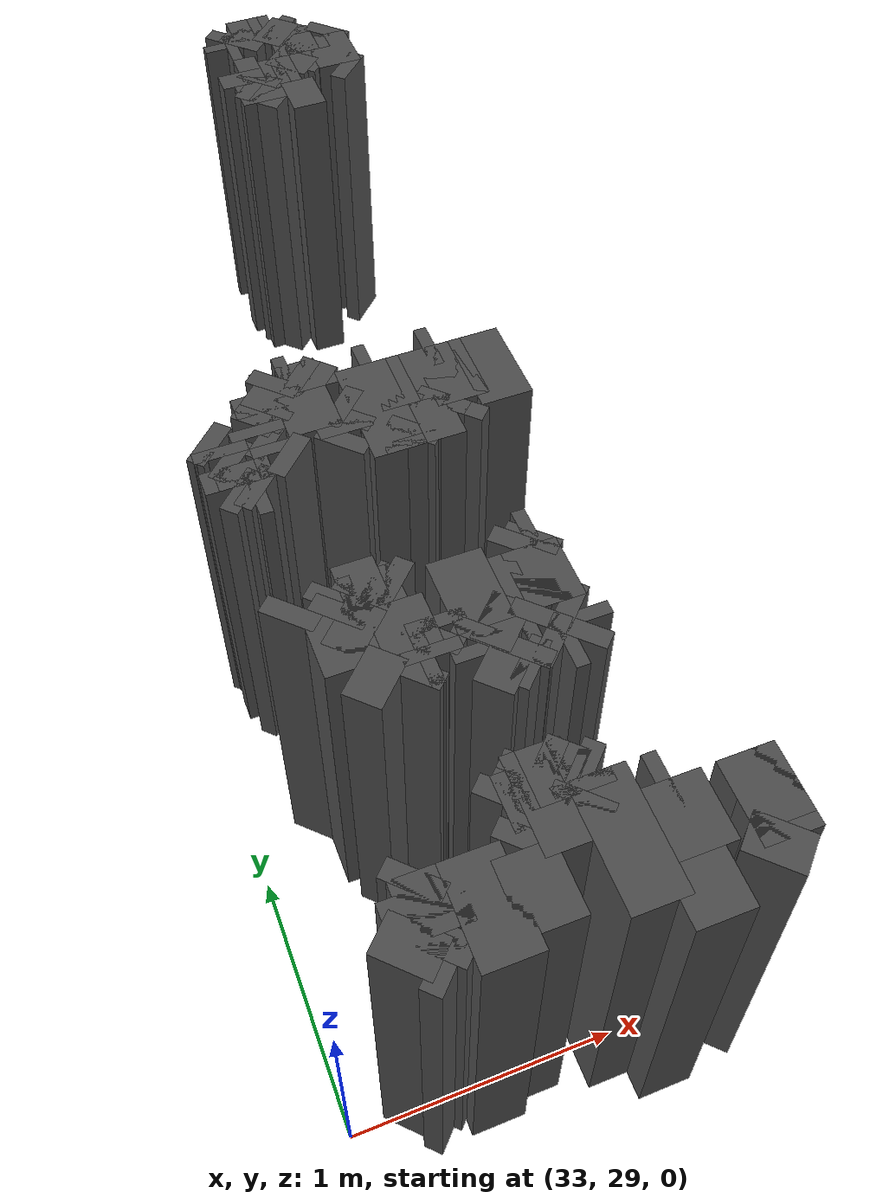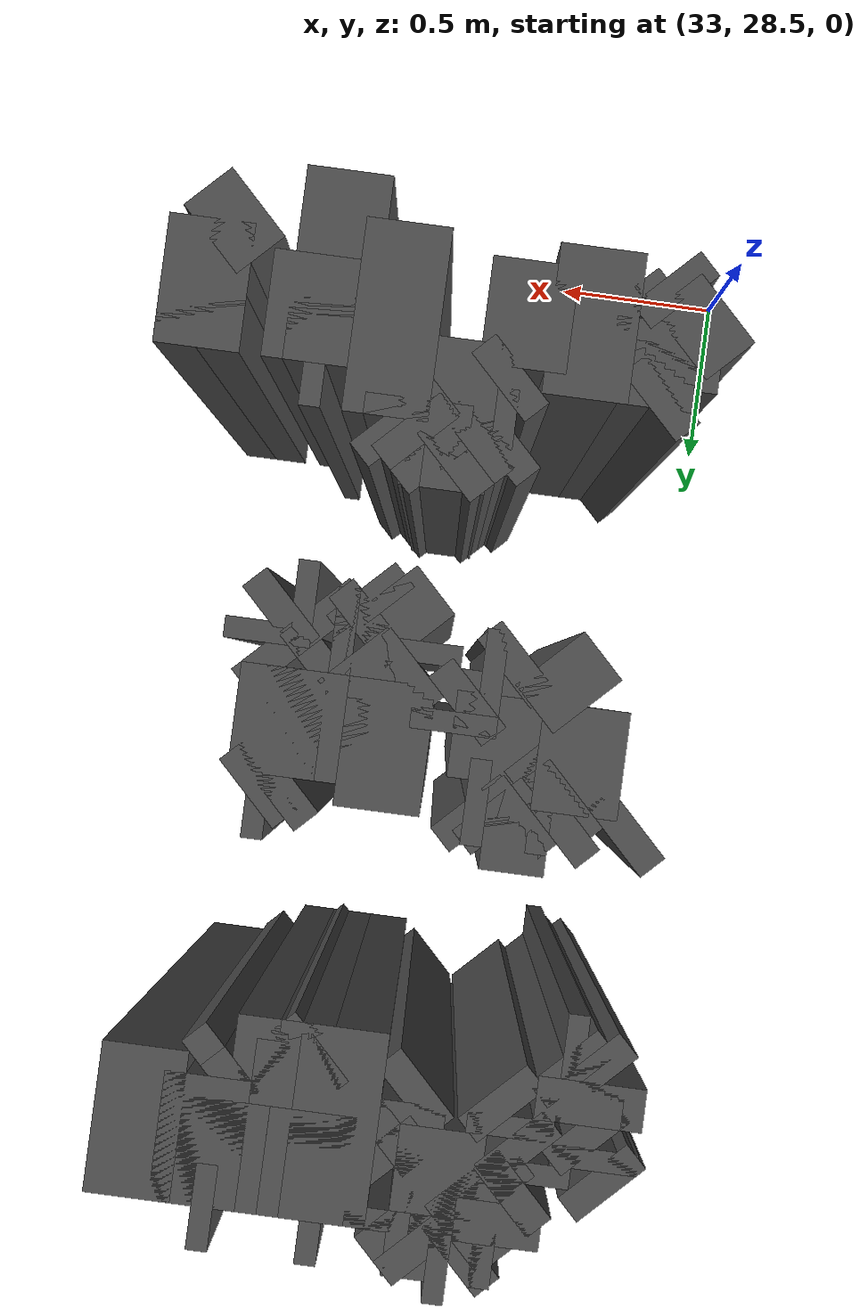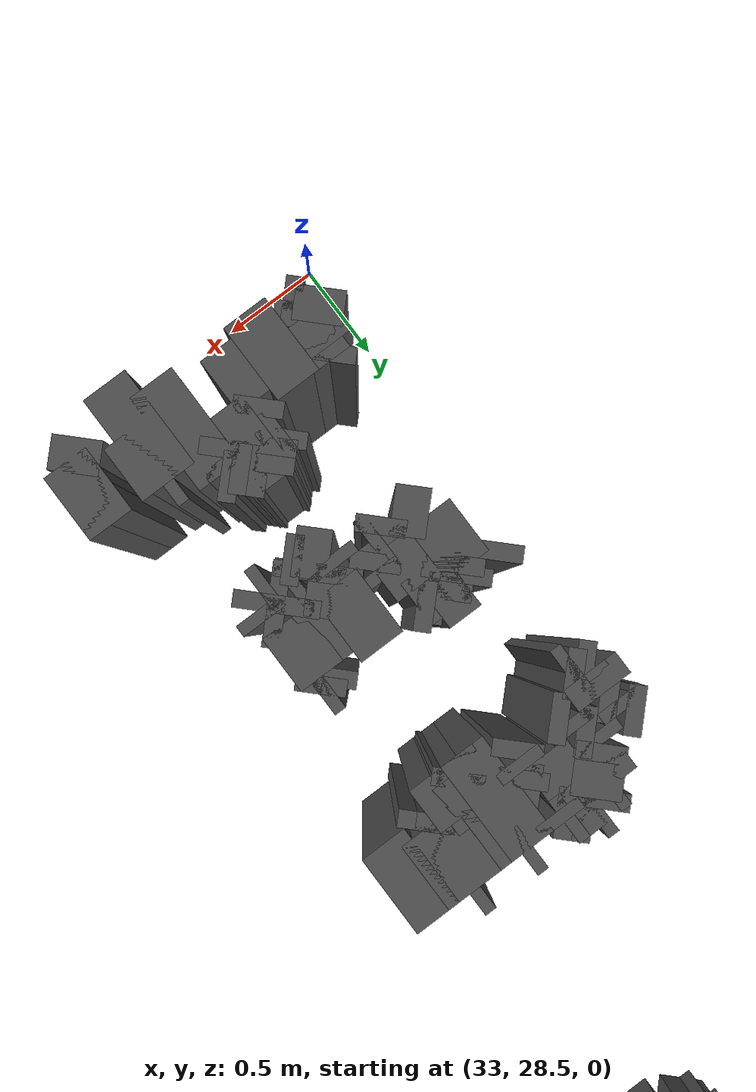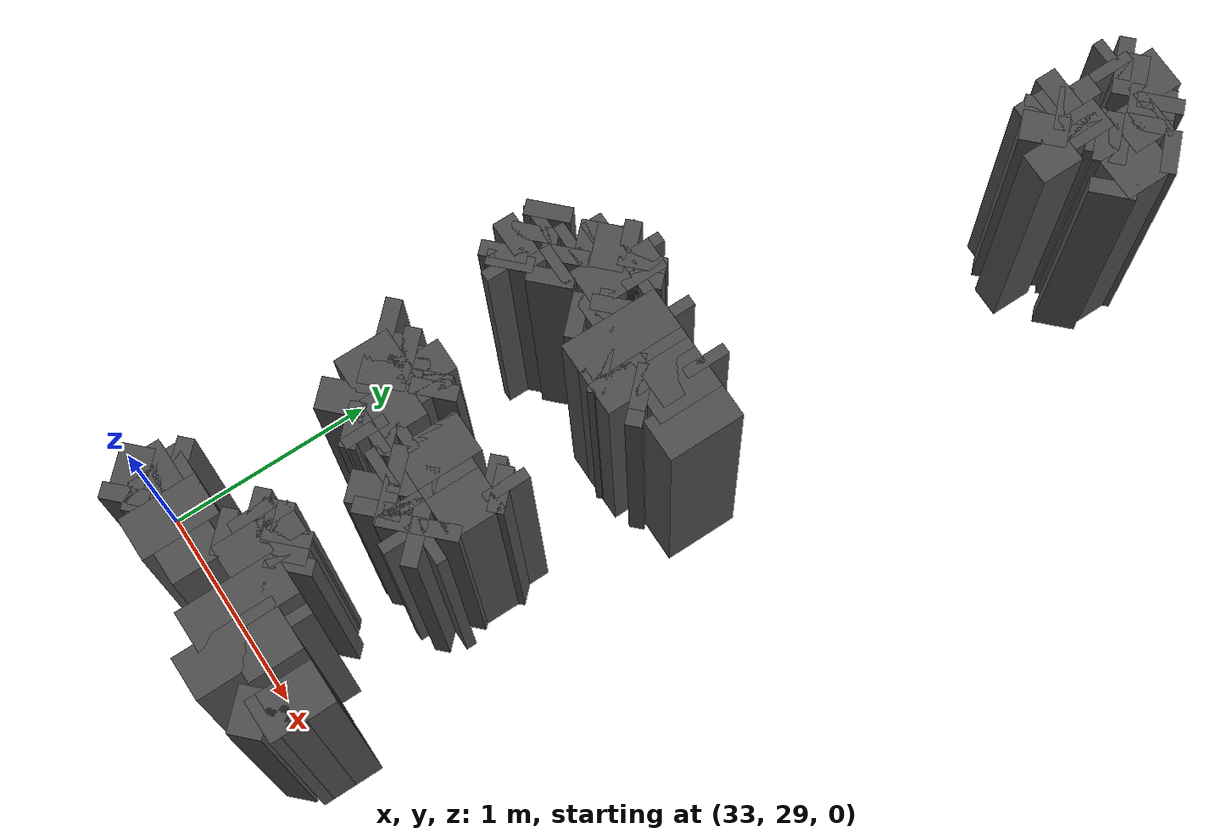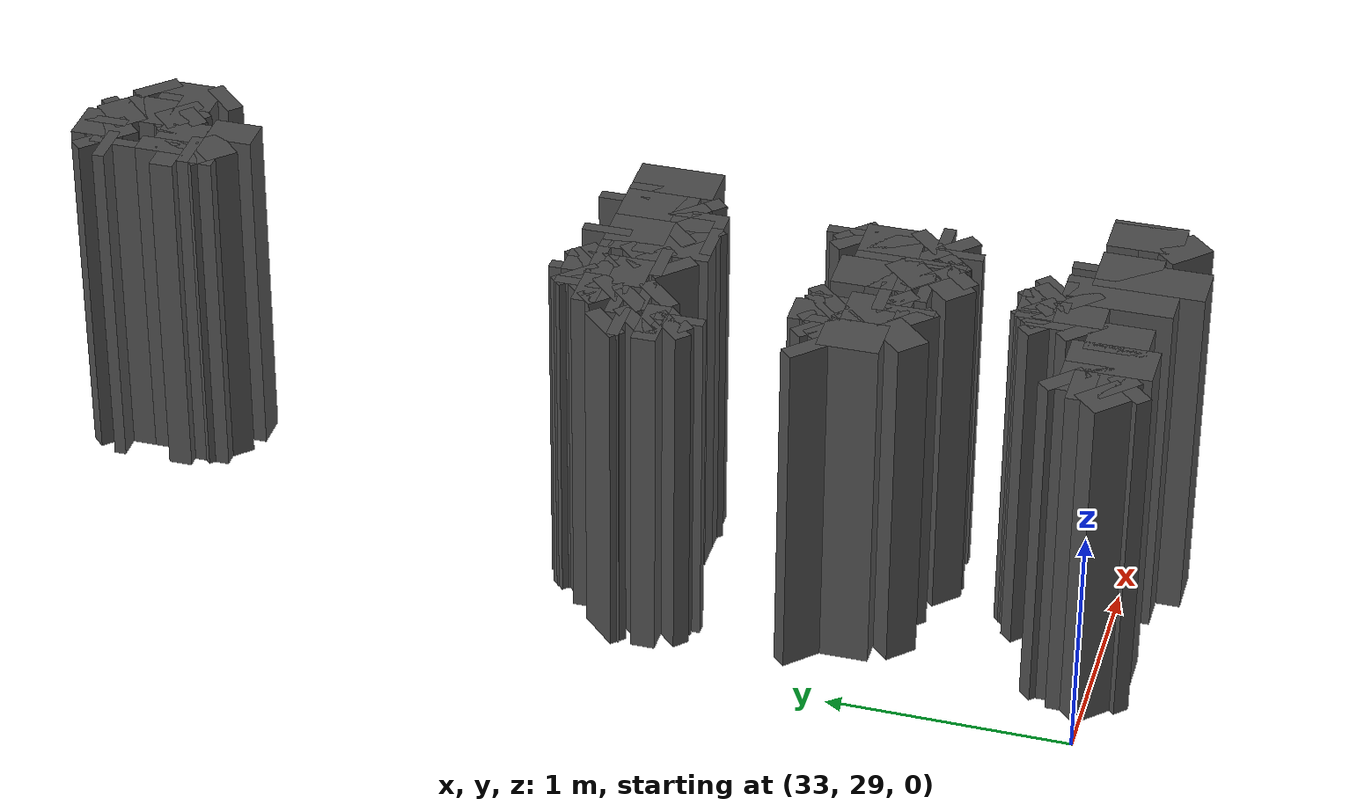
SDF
<sdf version="1.9">
 <model name="generated_walls">
  <static>true</static>
  <link name="wall_7_2">
   <pose>34.425 32.975 0.75 0 0 2.356</pose>
   <collision name="collision"><geometry><box><size>0.071 0.2 1.5</size></box></geometry></collision>
   <visual name="visual">
    <geometry><box><size>0.071 0.2 1.5</size></box></geometry>
    <material><ambient>0.3 0.3 0.3 1</ambient></material>
   </visual>
  </link>
  <link name="wall_7_3">
   <pose>34.400 33.125 0.75 0 0 1.571</pose>
   <collision name="collision"><geometry><box><size>0.250 0.2 1.5</size></box></geometry></collision>
   <visual name="visual">
    <geometry><box><size>0.250 0.2 1.5</size></box></geometry>
    <material><ambient>0.3 0.3 0.3 1</ambient></material>
   </visual>
  </link>
  <link name="wall_7_4">
   <pose>34.425 33.275 0.75 0 0 0.785</pose>
   <collision name="collision"><geometry><box><size>0.071 0.2 1.5</size></box></geometry></collision>
   <visual name="visual">
    <geometry><box><size>0.071 0.2 1.5</size></box></geometry>
    <material><ambient>0.3 0.3 0.3 1</ambient></material>
   </visual>
  </link>
  <link name="wall_8_0">
   <pose>34.000 32.900 0.75 0 0 1.571</pose>
   <collision name="collision"><geometry><box><size>0.100 0.2 1.5</size></box></geometry></collision>
   <visual name="visual">
    <geometry><box><size>0.100 0.2 1.5</size></box></geometry>
    <material><ambient>0.3 0.3 0.3 1</ambient></material>
   </visual>
  </link>
  <link name="wall_8_1">
   <pose>33.975 32.975 0.75 0 0 2.356</pose>
   <collision name="collision"><geometry><box><size>0.071 0.2 1.5</size></box></geometry></collision>
   <visual name="visual">
    <geometry><box><size>0.071 0.2 1.5</size></box></geometry>
    <material><ambient>0.3 0.3 0.3 1</ambient></material>
   </visual>
  </link>
  <link name="wall_8_2">
   <pose>33.950 33.050 0.75 0 0 1.571</pose>
   <collision name="collision"><geometry><box><size>0.100 0.2 1.5</size></box></geometry></collision>
   <visual name="visual">
    <geometry><box><size>0.100 0.2 1.5</size></box></geometry>
    <material><ambient>0.3 0.3 0.3 1</ambient></material>
   </visual>
  </link>
  <link name="wall_8_3">
   <pose>34.000 33.100 0.75 0 0 0.000</pose>
   <collision name="collision"><geometry><box><size>0.100 0.2 1.5</size></box></geometry></collision>
   <visual name="visual">
    <geometry><box><size>0.100 0.2 1.5</size></box></geometry>
    <material><ambient>0.3 0.3 0.3 1</ambient></material>
   </visual>
  </link>
  <link name="wall_8_4">
   <pose>34.075 33.075 0.75 0 0 -0.785</pose>
   <collision name="collision"><geometry><box><size>0.071 0.2 1.5</size></box></geometry></collision>
   <visual name="visual">
    <geometry><box><size>0.071 0.2 1.5</size></box></geometry>
    <material><ambient>0.3 0.3 0.3 1</ambient></material>
   </visual>
  </link>
  <link name="wall_8_5">
   <pose>34.125 33.050 0.75 0 0 0.000</pose>
   <collision name="collision"><geometry><box><size>0.050 0.2 1.5</size></box></geometry></collision>
   <visual name="visual">
    <geometry><box><size>0.050 0.2 1.5</size></box></geometry>
    <material><ambient>0.3 0.3 0.3 1</ambient></material>
   </visual>
  </link>
  <link name="wall_8_6">
   <pose>34.200 33.100 0.75 0 0 0.785</pose>
   <collision name="collision"><geometry><box><size>0.141 0.2 1.5</size></box></geometry></collision>
   <visual name="visual">
    <geometry><box><size>0.141 0.2 1.5</size></box></geometry>
    <material><ambient>0.3 0.3 0.3 1</ambient></material>
   </visual>
  </link>
  <link name="wall_8_7">
   <pose>34.250 33.225 0.75 0 0 1.571</pose>
   <collision name="collision"><geometry><box><size>0.150 0.2 1.5</size></box></geometry></collision>
   <visual name="visual">
    <geometry><box><size>0.150 0.2 1.5</size></box></geometry>
    <material><ambient>0.3 0.3 0.3 1</ambient></material>
   </visual>
  </link>
  <link name="wall_8_8">
   <pose>34.200 33.350 0.75 0 0 2.356</pose>
   <collision name="collision"><geometry><box><size>0.141 0.2 1.5</size></box></geometry></collision>
   <visual name="visual">
    <geometry><box><size>0.141 0.2 1.5</size></box></geometry>
    <material><ambient>0.3 0.3 0.3 1</ambient></material>
   </visual>
  </link>
  <link name="wall_8_9">
   <pose>34.125 33.400 0.75 0 0 3.142</pose>
   <collision name="collision"><geometry><box><size>0.050 0.2 1.5</size></box></geometry></collision>
   <visual name="visual">
    <geometry><box><size>0.050 0.2 1.5</size></box></geometry>
    <material><ambient>0.3 0.3 0.3 1</ambient></material>
   </visual>
  </link>
  <link name="wall_8_10">
   <pose>34.050 33.350 0.75 0 0 -2.356</pose>
   <collision name="collision"><geometry><box><size>0.141 0.2 1.5</size></box></geometry></collision>
   <visual name="visual">
    <geometry><box><size>0.141 0.2 1.5</size></box></geometry>
    <material><ambient>0.3 0.3 0.3 1</ambient></material>
   </visual>
  </link>
  <link name="wall_8_11">
   <pose>33.975 33.300 0.75 0 0 3.142</pose>
   <collision name="collision"><geometry><box><size>0.050 0.2 1.5</size></box></geometry></collision>
   <visual name="visual">
    <geometry><box><size>0.050 0.2 1.5</size></box></geometry>
    <material><ambient>0.3 0.3 0.3 1</ambient></material>
   </visual>
  </link>
  <link name="wall_8_12">
   <pose>33.950 33.325 0.75 0 0 1.571</pose>
   <collision name="collision"><geometry><box><size>0.050 0.2 1.5</size></box></geometry></collision>
   <visual name="visual">
    <geometry><box><size>0.050 0.2 1.5</size></box></geometry>
    <material><ambient>0.3 0.3 0.3 1</ambient></material>
   </visual>
  </link>
  <link name="wall_8_13">
   <pose>33.975 33.375 0.75 0 0 0.785</pose>
   <collision name="collision"><geometry><box><size>0.071 0.2 1.5</size></box></geometry></collision>
   <visual name="visual">
    <geometry><box><size>0.071 0.2 1.5</size></box></geometry>
    <material><ambient>0.3 0.3 0.3 1</ambient></material>
   </visual>
  </link>
  <link name="wall_8_14">
   <pose>34.100 33.400 0.75 0 0 0.000</pose>
   <collision name="collision"><geometry><box><size>0.200 0.2 1.5</size></box></geometry></collision>
   <visual name="visual">
    <geometry><box><size>0.200 0.2 1.5</size></box></geometry>
    <material><ambient>0.3 0.3 0.3 1</ambient></material>
   </visual>
  </link>
  <link name="wall_8_15">
   <pose>34.225 33.375 0.75 0 0 -0.785</pose>
   <collision name="collision"><geometry><box><size>0.071 0.2 1.5</size></box></geometry></collision>
   <visual name="visual">
    <geometry><box><size>0.071 0.2 1.5</size></box></geometry>
    <material><ambient>0.3 0.3 0.3 1</ambient></material>
   </visual>
  </link>
  <link name="wall_8_16">
   <pose>34.250 33.325 0.75 0 0 -1.571</pose>
   <collision name="collision"><geometry><box><size>0.050 0.2 1.5</size></box></geometry></collision>
   <visual name="visual">
    <geometry><box><size>0.050 0.2 1.5</size></box></geometry>
    <material><ambient>0.3 0.3 0.3 1</ambient></material>
   </visual>
  </link>
  <link name="wall_8_17">
   <pose>34.275 33.275 0.75 0 0 -0.785</pose>
   <collision name="collision"><geometry><box><size>0.071 0.2 1.5</size></box></geometry></collision>
   <visual name="visual">
    <geometry><box><size>0.071 0.2 1.5</size></box></geometry>
    <material><ambient>0.3 0.3 0.3 1</ambient></material>
   </visual>
  </link>
  <link name="wall_8_18">
   <pose>34.300 33.200 0.75 0 0 -1.571</pose>
   <collision name="collision"><geometry><box><size>0.100 0.2 1.5</size></box></geometry></collision>
   <visual name="visual">
    <geometry><box><size>0.100 0.2 1.5</size></box></geometry>
    <material><ambient>0.3 0.3 0.3 1</ambient></material>
   </visual>
  </link>
  <link name="wall_8_19">
   <pose>34.250 33.100 0.75 0 0 -2.356</pose>
   <collision name="collision"><geometry><box><size>0.141 0.2 1.5</size></box></geometry></collision>
   <visual name="visual">
    <geometry><box><size>0.141 0.2 1.5</size></box></geometry>
    <material><ambient>0.3 0.3 0.3 1</ambient></material>
   </visual>
  </link>
  <link name="wall_8_20">
   <pose>34.125 33.050 0.75 0 0 3.142</pose>
   <collision name="collision"><geometry><box><size>0.150 0.2 1.5</size></box></geometry></collision>
   <visual name="visual">
    <geometry><box><size>0.150 0.2 1.5</size></box></geometry>
    <material><ambient>0.3 0.3 0.3 1</ambient></material>
   </visual>
  </link>
  <link name="wall_8_21">
   <pose>34.025 33.025 0.75 0 0 -2.356</pose>
   <collision name="collision"><geometry><box><size>0.071 0.2 1.5</size></box></geometry></collision>
   <visual name="visual">
    <geometry><box><size>0.071 0.2 1.5</size></box></geometry>
    <material><ambient>0.3 0.3 0.3 1</ambient></material>
   </visual>
  </link>
  <link name="wall_8_22">
   <pose>34.000 32.975 0.75 0 0 -1.571</pose>
   <collision name="collision"><geometry><box><size>0.050 0.2 1.5</size></box></geometry></collision>
   <visual name="visual">
    <geometry><box><size>0.050 0.2 1.5</size></box></geometry>
    <material><ambient>0.3 0.3 0.3 1</ambient></material>
   </visual>
  </link>
  <link name="wall_8_23">
   <pose>34.050 32.900 0.75 0 0 -0.785</pose>
   <collision name="collision"><geometry><box><size>0.141 0.2 1.5</size></box></geometry></collision>
   <visual name="visual">
    <geometry><box><size>0.141 0.2 1.5</size></box></geometry>
    <material><ambient>0.3 0.3 0.3 1</ambient></material>
   </visual>
  </link>
  <link name="wall_8_24">
   <pose>34.175 32.850 0.75 0 0 0.000</pose>
   <collision name="collision"><geometry><box><size>0.150 0.2 1.5</size></box></geometry></collision>
   <visual name="visual">
    <geometry><box><size>0.150 0.2 1.5</size></box></geometry>
    <material><ambient>0.3 0.3 0.3 1</ambient></material>
   </visual>
  </link>
  <link name="wall_36_0">
   <pose>34.300 30.975 0.75 0 0 1.571</pose>
   <collision name="collision"><geometry><box><size>0.350 0.2 1.5</size></box></geometry></collision>
   <visual name="visual">
    <geometry><box><size>0.350 0.2 1.5</size></box></geometry>
    <material><ambient>0.3 0.3 0.3 1</ambient></material>
   </visual>
  </link>
  <link name="wall_37_0">
   <pose>33.475 30.825 0.75 0 0 2.356</pose>
   <collision name="collision"><geometry><box><size>0.071 0.2 1.5</size></box></geometry></collision>
   <visual name="visual">
    <geometry><box><size>0.071 0.2 1.5</size></box></geometry>
    <material><ambient>0.3 0.3 0.3 1</ambient></material>
   </visual>
  </link>
  <link name="wall_37_1">
   <pose>33.450 30.875 0.75 0 0 1.571</pose>
   <collision name="collision"><geometry><box><size>0.050 0.2 1.5</size></box></geometry></collision>
   <visual name="visual">
    <geometry><box><size>0.050 0.2 1.5</size></box></geometry>
    <material><ambient>0.3 0.3 0.3 1</ambient></material>
   </visual>
  </link>
  <link name="wall_37_2">
   <pose>33.425 30.925 0.75 0 0 2.356</pose>
   <collision name="collision"><geometry><box><size>0.071 0.2 1.5</size></box></geometry></collision>
   <visual name="visual">
    <geometry><box><size>0.071 0.2 1.5</size></box></geometry>
    <material><ambient>0.3 0.3 0.3 1</ambient></material>
   </visual>
  </link>
  <link name="wall_37_3">
   <pose>33.400 30.975 0.75 0 0 1.571</pose>
   <collision name="collision"><geometry><box><size>0.050 0.2 1.5</size></box></geometry></collision>
   <visual name="visual">
    <geometry><box><size>0.050 0.2 1.5</size></box></geometry>
    <material><ambient>0.3 0.3 0.3 1</ambient></material>
   </visual>
  </link>
  <link name="wall_37_4">
   <pose>33.425 31.025 0.75 0 0 0.785</pose>
   <collision name="collision"><geometry><box><size>0.071 0.2 1.5</size></box></geometry></collision>
   <visual name="visual">
    <geometry><box><size>0.071 0.2 1.5</size></box></geometry>
    <material><ambient>0.3 0.3 0.3 1</ambient></material>
   </visual>
  </link>
  <link name="wall_37_5">
   <pose>33.450 31.100 0.75 0 0 1.571</pose>
   <collision name="collision"><geometry><box><size>0.100 0.2 1.5</size></box></geometry></collision>
   <visual name="visual">
    <geometry><box><size>0.100 0.2 1.5</size></box></geometry>
    <material><ambient>0.3 0.3 0.3 1</ambient></material>
   </visual>
  </link>
  <link name="wall_37_6">
   <pose>33.475 31.150 0.75 0 0 0.000</pose>
   <collision name="collision"><geometry><box><size>0.050 0.2 1.5</size></box></geometry></collision>
   <visual name="visual">
    <geometry><box><size>0.050 0.2 1.5</size></box></geometry>
    <material><ambient>0.3 0.3 0.3 1</ambient></material>
   </visual>
  </link>
  <link name="wall_37_7">
   <pose>33.525 31.175 0.75 0 0 0.785</pose>
   <collision name="collision"><geometry><box><size>0.071 0.2 1.5</size></box></geometry></collision>
   <visual name="visual">
    <geometry><box><size>0.071 0.2 1.5</size></box></geometry>
    <material><ambient>0.3 0.3 0.3 1</ambient></material>
   </visual>
  </link>
  <link name="wall_37_8">
   <pose>33.575 31.200 0.75 0 0 0.000</pose>
   <collision name="collision"><geometry><box><size>0.050 0.2 1.5</size></box></geometry></collision>
   <visual name="visual">
    <geometry><box><size>0.050 0.2 1.5</size></box></geometry>
    <material><ambient>0.3 0.3 0.3 1</ambient></material>
   </visual>
  </link>
  <link name="wall_37_9">
   <pose>33.625 31.175 0.75 0 0 -0.785</pose>
   <collision name="collision"><geometry><box><size>0.071 0.2 1.5</size></box></geometry></collision>
   <visual name="visual">
    <geometry><box><size>0.071 0.2 1.5</size></box></geometry>
    <material><ambient>0.3 0.3 0.3 1</ambient></material>
   </visual>
  </link>
  <link name="wall_37_10">
   <pose>33.675 31.150 0.75 0 0 0.000</pose>
   <collision name="collision"><geometry><box><size>0.050 0.2 1.5</size></box></geometry></collision>
   <visual name="visual">
    <geometry><box><size>0.050 0.2 1.5</size></box></geometry>
    <material><ambient>0.3 0.3 0.3 1</ambient></material>
   </visual>
  </link>
  <link name="wall_37_11">
   <pose>33.700 31.125 0.75 0 0 -1.571</pose>
   <collision name="collision"><geometry><box><size>0.050 0.2 1.5</size></box></geometry></collision>
   <visual name="visual">
    <geometry><box><size>0.050 0.2 1.5</size></box></geometry>
    <material><ambient>0.3 0.3 0.3 1</ambient></material>
   </visual>
  </link>
  <link name="wall_37_12">
   <pose>33.675 31.125 0.75 0 0 2.356</pose>
   <collision name="collision"><geometry><box><size>0.071 0.2 1.5</size></box></geometry></collision>
   <visual name="visual">
    <geometry><box><size>0.071 0.2 1.5</size></box></geometry>
    <material><ambient>0.3 0.3 0.3 1</ambient></material>
   </visual>
  </link>
  <link name="wall_37_13">
   <pose>33.600 31.150 0.75 0 0 3.142</pose>
   <collision name="collision"><geometry><box><size>0.100 0.2 1.5</size></box></geometry></collision>
   <visual name="visual">
    <geometry><box><size>0.100 0.2 1.5</size></box></geometry>
    <material><ambient>0.3 0.3 0.3 1</ambient></material>
   </visual>
  </link>
  <link name="wall_37_14">
   <pose>33.500 31.100 0.75 0 0 -2.356</pose>
   <collision name="collision"><geometry><box><size>0.141 0.2 1.5</size></box></geometry></collision>
   <visual name="visual">
    <geometry><box><size>0.141 0.2 1.5</size></box></geometry>
    <material><ambient>0.3 0.3 0.3 1</ambient></material>
   </visual>
  </link>
  <link name="wall_37_15">
   <pose>33.475 31.025 0.75 0 0 -0.785</pose>
   <collision name="collision"><geometry><box><size>0.071 0.2 1.5</size></box></geometry></collision>
   <visual name="visual">
    <geometry><box><size>0.071 0.2 1.5</size></box></geometry>
    <material><ambient>0.3 0.3 0.3 1</ambient></material>
   </visual>
  </link>
  <link name="wall_37_16">
   <pose>33.600 31.000 0.75 0 0 0.000</pose>
   <collision name="collision"><geometry><box><size>0.200 0.2 1.5</size></box></geometry></collision>
   <visual name="visual">
    <geometry><box><size>0.200 0.2 1.5</size></box></geometry>
    <material><ambient>0.3 0.3 0.3 1</ambient></material>
   </visual>
  </link>
  <link name="wall_37_17">
   <pose>33.725 30.975 0.75 0 0 -0.785</pose>
   <collision name="collision"><geometry><box><size>0.071 0.2 1.5</size></box></geometry></collision>
   <visual name="visual">
    <geometry><box><size>0.071 0.2 1.5</size></box></geometry>
    <material><ambient>0.3 0.3 0.3 1</ambient></material>
   </visual>
  </link>
  <link name="wall_37_18">
   <pose>33.725 30.925 0.75 0 0 -2.356</pose>
   <collision name="collision"><geometry><box><size>0.071 0.2 1.5</size></box></geometry></collision>
   <visual name="visual">
    <geometry><box><size>0.071 0.2 1.5</size></box></geometry>
    <material><ambient>0.3 0.3 0.3 1</ambient></material>
   </visual>
  </link>
  <link name="wall_37_19">
   <pose>33.700 30.875 0.75 0 0 -1.571</pose>
   <collision name="collision"><geometry><box><size>0.050 0.2 1.5</size></box></geometry></collision>
   <visual name="visual">
    <geometry><box><size>0.050 0.2 1.5</size></box></geometry>
    <material><ambient>0.3 0.3 0.3 1</ambient></material>
   </visual>
  </link>
  <link name="wall_37_20">
   <pose>33.675 30.825 0.75 0 0 -2.356</pose>
   <collision name="collision"><geometry><box><size>0.071 0.2 1.5</size></box></geometry></collision>
   <visual name="visual">
    <geometry><box><size>0.071 0.2 1.5</size></box></geometry>
    <material><ambient>0.3 0.3 0.3 1</ambient></material>
   </visual>
  </link>
  <link name="wall_40_0">
   <pose>33.850 30.925 0.75 0 0 1.571</pose>
   <collision name="collision"><geometry><box><size>0.450 0.2 1.5</size></box></geometry></collision>
   <visual name="visual">
    <geometry><box><size>0.450 0.2 1.5</size></box></geometry>
    <material><ambient>0.3 0.3 0.3 1</ambient></material>
   </visual>
  </link>
  <link name="wall_40_1">
   <pose>33.875 31.150 0.75 0 0 0.000</pose>
   <collision name="collision"><geometry><box><size>0.050 0.2 1.5</size></box></geometry></collision>
   <visual name="visual">
    <geometry><box><size>0.050 0.2 1.5</size></box></geometry>
    <material><ambient>0.3 0.3 0.3 1</ambient></material>
   </visual>
  </link>
  <link name="wall_40_2">
   <pose>33.900 31.025 0.75 0 0 -1.571</pose>
   <collision name="collision"><geometry><box><size>0.250 0.2 1.5</size></box></geometry></collision>
   <visual name="visual">
    <geometry><box><size>0.250 0.2 1.5</size></box></geometry>
    <material><ambient>0.3 0.3 0.3 1</ambient></material>
   </visual>
  </link>
  <link name="wall_40_3">
   <pose>33.925 30.875 0.75 0 0 -0.785</pose>
   <collision name="collision"><geometry><box><size>0.071 0.2 1.5</size></box></geometry></collision>
   <visual name="visual">
    <geometry><box><size>0.071 0.2 1.5</size></box></geometry>
    <material><ambient>0.3 0.3 0.3 1</ambient></material>
   </visual>
  </link>
  <link name="wall_40_4">
   <pose>34.000 30.850 0.75 0 0 0.000</pose>
   <collision name="collision"><geometry><box><size>0.100 0.2 1.5</size></box></geometry></collision>
   <visual name="visual">
    <geometry><box><size>0.100 0.2 1.5</size></box></geometry>
    <material><ambient>0.3 0.3 0.3 1</ambient></material>
   </visual>
  </link>
  <link name="wall_40_5">
   <pose>34.075 30.875 0.75 0 0 0.785</pose>
   <collision name="collision"><geometry><box><size>0.071 0.2 1.5</size></box></geometry></collision>
   <visual name="visual">
    <geometry><box><size>0.071 0.2 1.5</size></box></geometry>
    <material><ambient>0.3 0.3 0.3 1</ambient></material>
   </visual>
  </link>
  <link name="wall_40_6">
   <pose>34.100 31.025 0.75 0 0 1.571</pose>
   <collision name="collision"><geometry><box><size>0.250 0.2 1.5</size></box></geometry></collision>
   <visual name="visual">
    <geometry><box><size>0.250 0.2 1.5</size></box></geometry>
    <material><ambient>0.3 0.3 0.3 1</ambient></material>
   </visual>
  </link>
  <link name="wall_40_7">
   <pose>34.125 31.150 0.75 0 0 0.000</pose>
   <collision name="collision"><geometry><box><size>0.050 0.2 1.5</size></box></geometry></collision>
   <visual name="visual">
    <geometry><box><size>0.050 0.2 1.5</size></box></geometry>
    <material><ambient>0.3 0.3 0.3 1</ambient></material>
   </visual>
  </link>
  <link name="wall_40_8">
   <pose>34.150 31.000 0.75 0 0 -1.571</pose>
   <collision name="collision"><geometry><box><size>0.300 0.2 1.5</size></box></geometry></collision>
   <visual name="visual">
    <geometry><box><size>0.300 0.2 1.5</size></box></geometry>
    <material><ambient>0.3 0.3 0.3 1</ambient></material>
   </visual>
  </link>
  <link name="wall_40_9">
   <pose>34.125 30.825 0.75 0 0 -2.356</pose>
   <collision name="collision"><geometry><box><size>0.071 0.2 1.5</size></box></geometry></collision>
   <visual name="visual">
    <geometry><box><size>0.071 0.2 1.5</size></box></geometry>
    <material><ambient>0.3 0.3 0.3 1</ambient></material>
   </visual>
  </link>
  <link name="wall_40_10">
   <pose>34.025 30.800 0.75 0 0 3.142</pose>
   <collision name="collision"><geometry><box><size>0.150 0.2 1.5</size></box></geometry></collision>
   <visual name="visual">
    <geometry><box><size>0.150 0.2 1.5</size></box></geometry>
    <material><ambient>0.3 0.3 0.3 1</ambient></material>
   </visual>
  </link>
  <link name="wall_40_11">
   <pose>33.925 30.775 0.75 0 0 -2.356</pose>
   <collision name="collision"><geometry><box><size>0.071 0.2 1.5</size></box></geometry></collision>
   <visual name="visual">
    <geometry><box><size>0.071 0.2 1.5</size></box></geometry>
    <material><ambient>0.3 0.3 0.3 1</ambient></material>
   </visual>
  </link>
  <link name="wall_40_12">
   <pose>33.900 30.725 0.75 0 0 -1.571</pose>
   <collision name="collision"><geometry><box><size>0.050 0.2 1.5</size></box></geometry></collision>
   <visual name="visual">
    <geometry><box><size>0.050 0.2 1.5</size></box></geometry>
    <material><ambient>0.3 0.3 0.3 1</ambient></material>
   </visual>
  </link>
  <link name="wall_43_9">
   <pose>33.225 30.975 0.75 0 0 -0.785</pose>
   <collision name="collision"><geometry><box><size>0.071 0.2 1.5</size></box></geometry></collision>
   <visual name="visual">
    <geometry><box><size>0.071 0.2 1.5</size></box></geometry>
    <material><ambient>0.3 0.3 0.3 1</ambient></material>
   </visual>
  </link>
  <link name="wall_43_10">
   <pose>33.250 30.925 0.75 0 0 -1.571</pose>
   <collision name="collision"><geometry><box><size>0.050 0.2 1.5</size></box></geometry></collision>
   <visual name="visual">
    <geometry><box><size>0.050 0.2 1.5</size></box></geometry>
    <material><ambient>0.3 0.3 0.3 1</ambient></material>
   </visual>
  </link>
  <link name="wall_43_11">
   <pose>33.275 30.875 0.75 0 0 -0.785</pose>
   <collision name="collision"><geometry><box><size>0.071 0.2 1.5</size></box></geometry></collision>
   <visual name="visual">
    <geometry><box><size>0.071 0.2 1.5</size></box></geometry>
    <material><ambient>0.3 0.3 0.3 1</ambient></material>
   </visual>
  </link>
  <link name="wall_43_12">
   <pose>33.300 30.800 0.75 0 0 -1.571</pose>
   <collision name="collision"><geometry><box><size>0.100 0.2 1.5</size></box></geometry></collision>
   <visual name="visual">
    <geometry><box><size>0.100 0.2 1.5</size></box></geometry>
    <material><ambient>0.3 0.3 0.3 1</ambient></material>
   </visual>
  </link>
  <link name="wall_43_13">
   <pose>33.325 30.725 0.75 0 0 -0.785</pose>
   <collision name="collision"><geometry><box><size>0.071 0.2 1.5</size></box></geometry></collision>
   <visual name="visual">
    <geometry><box><size>0.071 0.2 1.5</size></box></geometry>
    <material><ambient>0.3 0.3 0.3 1</ambient></material>
   </visual>
  </link>
  <link name="wall_43_14">
   <pose>33.325 30.700 0.75 0 0 3.142</pose>
   <collision name="collision"><geometry><box><size>0.050 0.2 1.5</size></box></geometry></collision>
   <visual name="visual">
    <geometry><box><size>0.050 0.2 1.5</size></box></geometry>
    <material><ambient>0.3 0.3 0.3 1</ambient></material>
   </visual>
  </link>
  <link name="wall_43_15">
   <pose>33.275 30.725 0.75 0 0 2.356</pose>
   <collision name="collision"><geometry><box><size>0.071 0.2 1.5</size></box></geometry></collision>
   <visual name="visual">
    <geometry><box><size>0.071 0.2 1.5</size></box></geometry>
    <material><ambient>0.3 0.3 0.3 1</ambient></material>
   </visual>
  </link>
  <link name="wall_43_16">
   <pose>33.250 30.800 0.75 0 0 1.571</pose>
   <collision name="collision"><geometry><box><size>0.100 0.2 1.5</size></box></geometry></collision>
   <visual name="visual">
    <geometry><box><size>0.100 0.2 1.5</size></box></geometry>
    <material><ambient>0.3 0.3 0.3 1</ambient></material>
   </visual>
  </link>
  <link name="wall_49_0">
   <pose>33.450 29.850 0.75 0 0 2.356</pose>
   <collision name="collision"><geometry><box><size>0.141 0.2 1.5</size></box></geometry></collision>
   <visual name="visual">
    <geometry><box><size>0.141 0.2 1.5</size></box></geometry>
    <material><ambient>0.3 0.3 0.3 1</ambient></material>
   </visual>
  </link>
  <link name="wall_49_1">
   <pose>33.400 30.025 0.75 0 0 1.571</pose>
   <collision name="collision"><geometry><box><size>0.250 0.2 1.5</size></box></geometry></collision>
   <visual name="visual">
    <geometry><box><size>0.250 0.2 1.5</size></box></geometry>
    <material><ambient>0.3 0.3 0.3 1</ambient></material>
   </visual>
  </link>
  <link name="wall_49_2">
   <pose>33.425 30.175 0.75 0 0 0.785</pose>
   <collision name="collision"><geometry><box><size>0.071 0.2 1.5</size></box></geometry></collision>
   <visual name="visual">
    <geometry><box><size>0.071 0.2 1.5</size></box></geometry>
    <material><ambient>0.3 0.3 0.3 1</ambient></material>
   </visual>
  </link>
  <link name="wall_49_3">
   <pose>33.525 30.200 0.75 0 0 0.000</pose>
   <collision name="collision"><geometry><box><size>0.150 0.2 1.5</size></box></geometry></collision>
   <visual name="visual">
    <geometry><box><size>0.150 0.2 1.5</size></box></geometry>
    <material><ambient>0.3 0.3 0.3 1</ambient></material>
   </visual>
  </link>
  <link name="wall_49_4">
   <pose>33.625 30.175 0.75 0 0 -0.785</pose>
   <collision name="collision"><geometry><box><size>0.071 0.2 1.5</size></box></geometry></collision>
   <visual name="visual">
    <geometry><box><size>0.071 0.2 1.5</size></box></geometry>
    <material><ambient>0.3 0.3 0.3 1</ambient></material>
   </visual>
  </link>
  <link name="wall_49_5">
   <pose>33.625 30.150 0.75 0 0 3.142</pose>
   <collision name="collision"><geometry><box><size>0.050 0.2 1.5</size></box></geometry></collision>
   <visual name="visual">
    <geometry><box><size>0.050 0.2 1.5</size></box></geometry>
    <material><ambient>0.3 0.3 0.3 1</ambient></material>
   </visual>
  </link>
  <link name="wall_49_6">
   <pose>33.575 30.175 0.75 0 0 2.356</pose>
   <collision name="collision"><geometry><box><size>0.071 0.2 1.5</size></box></geometry></collision>
   <visual name="visual">
    <geometry><box><size>0.071 0.2 1.5</size></box></geometry>
    <material><ambient>0.3 0.3 0.3 1</ambient></material>
   </visual>
  </link>
  <link name="wall_49_7">
   <pose>33.525 30.175 0.75 0 0 -2.356</pose>
   <collision name="collision"><geometry><box><size>0.071 0.2 1.5</size></box></geometry></collision>
   <visual name="visual">
    <geometry><box><size>0.071 0.2 1.5</size></box></geometry>
    <material><ambient>0.3 0.3 0.3 1</ambient></material>
   </visual>
  </link>
  <link name="wall_49_8">
   <pose>33.475 30.150 0.75 0 0 3.142</pose>
   <collision name="collision"><geometry><box><size>0.050 0.2 1.5</size></box></geometry></collision>
   <visual name="visual">
    <geometry><box><size>0.050 0.2 1.5</size></box></geometry>
    <material><ambient>0.3 0.3 0.3 1</ambient></material>
   </visual>
  </link>
  <link name="wall_49_9">
   <pose>33.425 30.125 0.75 0 0 -2.356</pose>
   <collision name="collision"><geometry><box><size>0.071 0.2 1.5</size></box></geometry></collision>
   <visual name="visual">
    <geometry><box><size>0.071 0.2 1.5</size></box></geometry>
    <material><ambient>0.3 0.3 0.3 1</ambient></material>
   </visual>
  </link>
  <link name="wall_49_10">
   <pose>33.450 30.050 0.75 0 0 -0.785</pose>
   <collision name="collision"><geometry><box><size>0.141 0.2 1.5</size></box></geometry></collision>
   <visual name="visual">
    <geometry><box><size>0.141 0.2 1.5</size></box></geometry>
    <material><ambient>0.3 0.3 0.3 1</ambient></material>
   </visual>
  </link>
  <link name="wall_49_11">
   <pose>33.600 30.000 0.75 0 0 0.000</pose>
   <collision name="collision"><geometry><box><size>0.200 0.2 1.5</size></box></geometry></collision>
   <visual name="visual">
    <geometry><box><size>0.200 0.2 1.5</size></box></geometry>
    <material><ambient>0.3 0.3 0.3 1</ambient></material>
   </visual>
  </link>
  <link name="wall_49_12">
   <pose>33.700 29.975 0.75 0 0 -1.571</pose>
   <collision name="collision"><geometry><box><size>0.050 0.2 1.5</size></box></geometry></collision>
   <visual name="visual">
    <geometry><box><size>0.050 0.2 1.5</size></box></geometry>
    <material><ambient>0.3 0.3 0.3 1</ambient></material>
   </visual>
  </link>
  <link name="wall_49_13">
   <pose>33.675 29.925 0.75 0 0 -2.356</pose>
   <collision name="collision"><geometry><box><size>0.071 0.2 1.5</size></box></geometry></collision>
   <visual name="visual">
    <geometry><box><size>0.071 0.2 1.5</size></box></geometry>
    <material><ambient>0.3 0.3 0.3 1</ambient></material>
   </visual>
  </link>
  <link name="wall_49_14">
   <pose>33.650 29.875 0.75 0 0 -1.571</pose>
   <collision name="collision"><geometry><box><size>0.050 0.2 1.5</size></box></geometry></collision>
   <visual name="visual">
    <geometry><box><size>0.050 0.2 1.5</size></box></geometry>
    <material><ambient>0.3 0.3 0.3 1</ambient></material>
   </visual>
  </link>
  <link name="wall_49_15">
   <pose>33.625 29.850 0.75 0 0 3.142</pose>
   <collision name="collision"><geometry><box><size>0.050 0.2 1.5</size></box></geometry></collision>
   <visual name="visual">
    <geometry><box><size>0.050 0.2 1.5</size></box></geometry>
    <material><ambient>0.3 0.3 0.3 1</ambient></material>
   </visual>
  </link>
  <link name="wall_49_16">
   <pose>33.575 29.825 0.75 0 0 -2.356</pose>
   <collision name="collision"><geometry><box><size>0.071 0.2 1.5</size></box></geometry></collision>
   <visual name="visual">
    <geometry><box><size>0.071 0.2 1.5</size></box></geometry>
    <material><ambient>0.3 0.3 0.3 1</ambient></material>
   </visual>
  </link>
  <link name="wall_54_0">
   <pose>33.850 29.750 0.75 0 0 2.356</pose>
   <collision name="collision"><geometry><box><size>0.141 0.2 1.5</size></box></geometry></collision>
   <visual name="visual">
    <geometry><box><size>0.141 0.2 1.5</size></box></geometry>
    <material><ambient>0.3 0.3 0.3 1</ambient></material>
   </visual>
  </link>
  <link name="wall_54_1">
   <pose>33.800 29.825 0.75 0 0 1.571</pose>
   <collision name="collision"><geometry><box><size>0.050 0.2 1.5</size></box></geometry></collision>
   <visual name="visual">
    <geometry><box><size>0.050 0.2 1.5</size></box></geometry>
    <material><ambient>0.3 0.3 0.3 1</ambient></material>
   </visual>
  </link>
  <link name="wall_54_2">
   <pose>33.825 29.875 0.75 0 0 0.785</pose>
   <collision name="collision"><geometry><box><size>0.071 0.2 1.5</size></box></geometry></collision>
   <visual name="visual">
    <geometry><box><size>0.071 0.2 1.5</size></box></geometry>
    <material><ambient>0.3 0.3 0.3 1</ambient></material>
   </visual>
  </link>
  <link name="wall_54_3">
   <pose>33.850 30.050 0.75 0 0 1.571</pose>
   <collision name="collision"><geometry><box><size>0.300 0.2 1.5</size></box></geometry></collision>
   <visual name="visual">
    <geometry><box><size>0.300 0.2 1.5</size></box></geometry>
    <material><ambient>0.3 0.3 0.3 1</ambient></material>
   </visual>
  </link>
  <link name="wall_54_4">
   <pose>33.850 30.075 0.75 0 0 -1.571</pose>
   <collision name="collision"><geometry><box><size>0.250 0.2 1.5</size></box></geometry></collision>
   <visual name="visual">
    <geometry><box><size>0.250 0.2 1.5</size></box></geometry>
    <material><ambient>0.3 0.3 0.3 1</ambient></material>
   </visual>
  </link>
  <link name="wall_54_5">
   <pose>33.900 29.900 0.75 0 0 -0.785</pose>
   <collision name="collision"><geometry><box><size>0.141 0.2 1.5</size></box></geometry></collision>
   <visual name="visual">
    <geometry><box><size>0.141 0.2 1.5</size></box></geometry>
    <material><ambient>0.3 0.3 0.3 1</ambient></material>
   </visual>
  </link>
  <link name="wall_54_6">
   <pose>33.975 29.850 0.75 0 0 0.000</pose>
   <collision name="collision"><geometry><box><size>0.050 0.2 1.5</size></box></geometry></collision>
   <visual name="visual">
    <geometry><box><size>0.050 0.2 1.5</size></box></geometry>
    <material><ambient>0.3 0.3 0.3 1</ambient></material>
   </visual>
  </link>
  <link name="wall_54_7">
   <pose>34.025 29.875 0.75 0 0 0.785</pose>
   <collision name="collision"><geometry><box><size>0.071 0.2 1.5</size></box></geometry></collision>
   <visual name="visual">
    <geometry><box><size>0.071 0.2 1.5</size></box></geometry>
    <material><ambient>0.3 0.3 0.3 1</ambient></material>
   </visual>
  </link>
  <link name="wall_54_8">
   <pose>34.050 30.025 0.75 0 0 1.571</pose>
   <collision name="collision"><geometry><box><size>0.250 0.2 1.5</size></box></geometry></collision>
   <visual name="visual">
    <geometry><box><size>0.250 0.2 1.5</size></box></geometry>
    <material><ambient>0.3 0.3 0.3 1</ambient></material>
   </visual>
  </link>
  <link name="wall_54_9">
   <pose>34.075 30.175 0.75 0 0 0.785</pose>
   <collision name="collision"><geometry><box><size>0.071 0.2 1.5</size></box></geometry></collision>
   <visual name="visual">
    <geometry><box><size>0.071 0.2 1.5</size></box></geometry>
    <material><ambient>0.3 0.3 0.3 1</ambient></material>
   </visual>
  </link>
  <link name="wall_54_10">
   <pose>34.125 30.200 0.75 0 0 0.000</pose>
   <collision name="collision"><geometry><box><size>0.050 0.2 1.5</size></box></geometry></collision>
   <visual name="visual">
    <geometry><box><size>0.050 0.2 1.5</size></box></geometry>
    <material><ambient>0.3 0.3 0.3 1</ambient></material>
   </visual>
  </link>
  <link name="wall_54_11">
   <pose>34.125 30.175 0.75 0 0 -2.356</pose>
   <collision name="collision"><geometry><box><size>0.071 0.2 1.5</size></box></geometry></collision>
   <visual name="visual">
    <geometry><box><size>0.071 0.2 1.5</size></box></geometry>
    <material><ambient>0.3 0.3 0.3 1</ambient></material>
   </visual>
  </link>
  <link name="wall_54_12">
   <pose>34.100 30.025 0.75 0 0 -1.571</pose>
   <collision name="collision"><geometry><box><size>0.250 0.2 1.5</size></box></geometry></collision>
   <visual name="visual">
    <geometry><box><size>0.250 0.2 1.5</size></box></geometry>
    <material><ambient>0.3 0.3 0.3 1</ambient></material>
   </visual>
  </link>
  <link name="wall_54_13">
   <pose>34.125 29.875 0.75 0 0 -0.785</pose>
   <collision name="collision"><geometry><box><size>0.071 0.2 1.5</size></box></geometry></collision>
   <visual name="visual">
    <geometry><box><size>0.071 0.2 1.5</size></box></geometry>
    <material><ambient>0.3 0.3 0.3 1</ambient></material>
   </visual>
  </link>
  <link name="wall_54_14">
   <pose>34.150 29.825 0.75 0 0 -1.571</pose>
   <collision name="collision"><geometry><box><size>0.050 0.2 1.5</size></box></geometry></collision>
   <visual name="visual">
    <geometry><box><size>0.050 0.2 1.5</size></box></geometry>
    <material><ambient>0.3 0.3 0.3 1</ambient></material>
   </visual>
  </link>
  <link name="wall_54_15">
   <pose>34.125 29.775 0.75 0 0 -2.356</pose>
   <collision name="collision"><geometry><box><size>0.071 0.2 1.5</size></box></geometry></collision>
   <visual name="visual">
    <geometry><box><size>0.071 0.2 1.5</size></box></geometry>
    <material><ambient>0.3 0.3 0.3 1</ambient></material>
   </visual>
  </link>
  <link name="wall_54_16">
   <pose>34.075 29.750 0.75 0 0 3.142</pose>
   <collision name="collision"><geometry><box><size>0.050 0.2 1.5</size></box></geometry></collision>
   <visual name="visual">
    <geometry><box><size>0.050 0.2 1.5</size></box></geometry>
    <material><ambient>0.3 0.3 0.3 1</ambient></material>
   </visual>
  </link>
  <link name="wall_54_17">
   <pose>34.025 29.775 0.75 0 0 2.356</pose>
   <collision name="collision"><geometry><box><size>0.071 0.2 1.5</size></box></geometry></collision>
   <visual name="visual">
    <geometry><box><size>0.071 0.2 1.5</size></box></geometry>
    <material><ambient>0.3 0.3 0.3 1</ambient></material>
   </visual>
  </link>
  <link name="wall_54_18">
   <pose>33.975 29.800 0.75 0 0 3.142</pose>
   <collision name="collision"><geometry><box><size>0.050 0.2 1.5</size></box></geometry></collision>
   <visual name="visual">
    <geometry><box><size>0.050 0.2 1.5</size></box></geometry>
    <material><ambient>0.3 0.3 0.3 1</ambient></material>
   </visual>
  </link>
  <link name="wall_54_19">
   <pose>33.925 29.775 0.75 0 0 -2.356</pose>
   <collision name="collision"><geometry><box><size>0.071 0.2 1.5</size></box></geometry></collision>
   <visual name="visual">
    <geometry><box><size>0.071 0.2 1.5</size></box></geometry>
    <material><ambient>0.3 0.3 0.3 1</ambient></material>
   </visual>
  </link>
  <link name="wall_54_20">
   <pose>33.925 29.725 0.75 0 0 -0.785</pose>
   <collision name="collision"><geometry><box><size>0.071 0.2 1.5</size></box></geometry></collision>
   <visual name="visual">
    <geometry><box><size>0.071 0.2 1.5</size></box></geometry>
    <material><ambient>0.3 0.3 0.3 1</ambient></material>
   </visual>
  </link>
  <link name="wall_55_4">
   <pose>33.275 30.175 0.75 0 0 -2.356</pose>
   <collision name="collision"><geometry><box><size>0.071 0.2 1.5</size></box></geometry></collision>
   <visual name="visual">
    <geometry><box><size>0.071 0.2 1.5</size></box></geometry>
    <material><ambient>0.3 0.3 0.3 1</ambient></material>
   </visual>
  </link>
  <link name="wall_60_1">
   <pose>33.650 29.025 0.75 0 0 1.571</pose>
   <collision name="collision"><geometry><box><size>0.250 0.2 1.5</size></box></geometry></collision>
   <visual name="visual">
    <geometry><box><size>0.250 0.2 1.5</size></box></geometry>
    <material><ambient>0.3 0.3 0.3 1</ambient></material>
   </visual>
  </link>
  <link name="wall_60_2">
   <pose>33.675 29.175 0.75 0 0 0.785</pose>
   <collision name="collision"><geometry><box><size>0.071 0.2 1.5</size></box></geometry></collision>
   <visual name="visual">
    <geometry><box><size>0.071 0.2 1.5</size></box></geometry>
    <material><ambient>0.3 0.3 0.3 1</ambient></material>
   </visual>
  </link>
  <link name="wall_60_3">
   <pose>33.775 29.200 0.75 0 0 0.000</pose>
   <collision name="collision"><geometry><box><size>0.150 0.2 1.5</size></box></geometry></collision>
   <visual name="visual">
    <geometry><box><size>0.150 0.2 1.5</size></box></geometry>
    <material><ambient>0.3 0.3 0.3 1</ambient></material>
   </visual>
  </link>
  <link name="wall_60_4">
   <pose>33.875 29.225 0.75 0 0 0.785</pose>
   <collision name="collision"><geometry><box><size>0.071 0.2 1.5</size></box></geometry></collision>
   <visual name="visual">
    <geometry><box><size>0.071 0.2 1.5</size></box></geometry>
    <material><ambient>0.3 0.3 0.3 1</ambient></material>
   </visual>
  </link>
  <link name="wall_60_5">
   <pose>33.900 29.275 0.75 0 0 1.571</pose>
   <collision name="collision"><geometry><box><size>0.050 0.2 1.5</size></box></geometry></collision>
   <visual name="visual">
    <geometry><box><size>0.050 0.2 1.5</size></box></geometry>
    <material><ambient>0.3 0.3 0.3 1</ambient></material>
   </visual>
  </link>
  <link name="wall_60_6">
   <pose>33.875 29.325 0.75 0 0 2.356</pose>
   <collision name="collision"><geometry><box><size>0.071 0.2 1.5</size></box></geometry></collision>
   <visual name="visual">
    <geometry><box><size>0.071 0.2 1.5</size></box></geometry>
    <material><ambient>0.3 0.3 0.3 1</ambient></material>
   </visual>
  </link>
  <link name="wall_60_7">
   <pose>33.800 29.350 0.75 0 0 3.142</pose>
   <collision name="collision"><geometry><box><size>0.100 0.2 1.5</size></box></geometry></collision>
   <visual name="visual">
    <geometry><box><size>0.100 0.2 1.5</size></box></geometry>
    <material><ambient>0.3 0.3 0.3 1</ambient></material>
   </visual>
  </link>
  <link name="wall_60_8">
   <pose>33.725 29.325 0.75 0 0 -2.356</pose>
   <collision name="collision"><geometry><box><size>0.071 0.2 1.5</size></box></geometry></collision>
   <visual name="visual">
    <geometry><box><size>0.071 0.2 1.5</size></box></geometry>
    <material><ambient>0.3 0.3 0.3 1</ambient></material>
   </visual>
  </link>
  <link name="wall_60_9">
   <pose>33.675 29.300 0.75 0 0 3.142</pose>
   <collision name="collision"><geometry><box><size>0.050 0.2 1.5</size></box></geometry></collision>
   <visual name="visual">
    <geometry><box><size>0.050 0.2 1.5</size></box></geometry>
    <material><ambient>0.3 0.3 0.3 1</ambient></material>
   </visual>
  </link>
  <link name="wall_60_10">
   <pose>33.675 29.325 0.75 0 0 0.785</pose>
   <collision name="collision"><geometry><box><size>0.071 0.2 1.5</size></box></geometry></collision>
   <visual name="visual">
    <geometry><box><size>0.071 0.2 1.5</size></box></geometry>
    <material><ambient>0.3 0.3 0.3 1</ambient></material>
   </visual>
  </link>
  <link name="wall_60_11">
   <pose>33.725 29.350 0.75 0 0 0.000</pose>
   <collision name="collision"><geometry><box><size>0.050 0.2 1.5</size></box></geometry></collision>
   <visual name="visual">
    <geometry><box><size>0.050 0.2 1.5</size></box></geometry>
    <material><ambient>0.3 0.3 0.3 1</ambient></material>
   </visual>
  </link>
  <link name="wall_60_12">
   <pose>33.775 29.375 0.75 0 0 0.785</pose>
   <collision name="collision"><geometry><box><size>0.071 0.2 1.5</size></box></geometry></collision>
   <visual name="visual">
    <geometry><box><size>0.071 0.2 1.5</size></box></geometry>
    <material><ambient>0.3 0.3 0.3 1</ambient></material>
   </visual>
  </link>
  <link name="wall_60_13">
   <pose>33.825 29.375 0.75 0 0 -0.785</pose>
   <collision name="collision"><geometry><box><size>0.071 0.2 1.5</size></box></geometry></collision>
   <visual name="visual">
    <geometry><box><size>0.071 0.2 1.5</size></box></geometry>
    <material><ambient>0.3 0.3 0.3 1</ambient></material>
   </visual>
  </link>
  <link name="wall_60_14">
   <pose>33.875 29.350 0.75 0 0 0.000</pose>
   <collision name="collision"><geometry><box><size>0.050 0.2 1.5</size></box></geometry></collision>
   <visual name="visual">
    <geometry><box><size>0.050 0.2 1.5</size></box></geometry>
    <material><ambient>0.3 0.3 0.3 1</ambient></material>
   </visual>
  </link>
  <link name="wall_60_15">
   <pose>33.925 29.325 0.75 0 0 -0.785</pose>
   <collision name="collision"><geometry><box><size>0.071 0.2 1.5</size></box></geometry></collision>
   <visual name="visual">
    <geometry><box><size>0.071 0.2 1.5</size></box></geometry>
    <material><ambient>0.3 0.3 0.3 1</ambient></material>
   </visual>
  </link>
  <link name="wall_60_16">
   <pose>33.950 29.075 0.75 0 0 -1.571</pose>
   <collision name="collision"><geometry><box><size>0.450 0.2 1.5</size></box></geometry></collision>
   <visual name="visual">
    <geometry><box><size>0.450 0.2 1.5</size></box></geometry>
    <material><ambient>0.3 0.3 0.3 1</ambient></material>
   </visual>
  </link>
  <link name="wall_61_0">
   <pose>33.500 29.025 0.75 0 0 1.571</pose>
   <collision name="collision"><geometry><box><size>0.350 0.2 1.5</size></box></geometry></collision>
   <visual name="visual">
    <geometry><box><size>0.350 0.2 1.5</size></box></geometry>
    <material><ambient>0.3 0.3 0.3 1</ambient></material>
   </visual>
  </link>
  <link name="wall_67_1">
   <pose>34.100 28.975 0.75 0 0 1.571</pose>
   <collision name="collision"><geometry><box><size>0.450 0.2 1.5</size></box></geometry></collision>
   <visual name="visual">
    <geometry><box><size>0.450 0.2 1.5</size></box></geometry>
    <material><ambient>0.3 0.3 0.3 1</ambient></material>
   </visual>
  </link>
  <link name="wall_67_2">
   <pose>34.125 29.200 0.75 0 0 0.000</pose>
   <collision name="collision"><geometry><box><size>0.050 0.2 1.5</size></box></geometry></collision>
   <visual name="visual">
    <geometry><box><size>0.050 0.2 1.5</size></box></geometry>
    <material><ambient>0.3 0.3 0.3 1</ambient></material>
   </visual>
  </link>
  <link name="wall_67_3">
   <pose>34.150 29.075 0.75 0 0 -1.571</pose>
   <collision name="collision"><geometry><box><size>0.250 0.2 1.5</size></box></geometry></collision>
   <visual name="visual">
    <geometry><box><size>0.250 0.2 1.5</size></box></geometry>
    <material><ambient>0.3 0.3 0.3 1</ambient></material>
   </visual>
  </link>
  <link name="wall_67_6">
   <pose>34.350 28.900 0.75 0 0 0.785</pose>
   <collision name="collision"><geometry><box><size>0.141 0.2 1.5</size></box></geometry></collision>
   <visual name="visual">
    <geometry><box><size>0.141 0.2 1.5</size></box></geometry>
    <material><ambient>0.3 0.3 0.3 1</ambient></material>
   </visual>
  </link>
  <link name="wall_67_7">
   <pose>34.400 29.075 0.75 0 0 1.571</pose>
   <collision name="collision"><geometry><box><size>0.250 0.2 1.5</size></box></geometry></collision>
   <visual name="visual">
    <geometry><box><size>0.250 0.2 1.5</size></box></geometry>
    <material><ambient>0.3 0.3 0.3 1</ambient></material>
   </visual>
  </link>
  <link name="wall_67_8">
   <pose>34.400 29.050 0.75 0 0 -1.571</pose>
   <collision name="collision"><geometry><box><size>0.300 0.2 1.5</size></box></geometry></collision>
   <visual name="visual">
    <geometry><box><size>0.300 0.2 1.5</size></box></geometry>
    <material><ambient>0.3 0.3 0.3 1</ambient></material>
   </visual>
  </link>
  <link name="wall_69_6">
   <pose>33.250 29.000 0.75 0 0 0.785</pose>
   <collision name="collision"><geometry><box><size>0.141 0.2 1.5</size></box></geometry></collision>
   <visual name="visual">
    <geometry><box><size>0.141 0.2 1.5</size></box></geometry>
    <material><ambient>0.3 0.3 0.3 1</ambient></material>
   </visual>
  </link>
  <link name="wall_69_7">
   <pose>33.300 29.100 0.75 0 0 1.571</pose>
   <collision name="collision"><geometry><box><size>0.100 0.2 1.5</size></box></geometry></collision>
   <visual name="visual">
    <geometry><box><size>0.100 0.2 1.5</size></box></geometry>
    <material><ambient>0.3 0.3 0.3 1</ambient></material>
   </visual>
  </link>
  <link name="wall_69_8">
   <pose>33.325 29.175 0.75 0 0 0.785</pose>
   <collision name="collision"><geometry><box><size>0.071 0.2 1.5</size></box></geometry></collision>
   <visual name="visual">
    <geometry><box><size>0.071 0.2 1.5</size></box></geometry>
    <material><ambient>0.3 0.3 0.3 1</ambient></material>
   </visual>
  </link>
  <link name="wall_69_9">
   <pose>33.350 29.100 0.75 0 0 -1.571</pose>
   <collision name="collision"><geometry><box><size>0.200 0.2 1.5</size></box></geometry></collision>
   <visual name="visual">
    <geometry><box><size>0.200 0.2 1.5</size></box></geometry>
    <material><ambient>0.3 0.3 0.3 1</ambient></material>
   </visual>
  </link>
  <link name="wall_69_10">
   <pose>33.325 28.975 0.75 0 0 -2.356</pose>
   <collision name="collision"><geometry><box><size>0.071 0.2 1.5</size></box></geometry></collision>
   <visual name="visual">
    <geometry><box><size>0.071 0.2 1.5</size></box></geometry>
    <material><ambient>0.3 0.3 0.3 1</ambient></material>
   </visual>
  </link>
  <link name="wall_69_11">
   <pose>33.325 28.925 0.75 0 0 -0.785</pose>
   <collision name="collision"><geometry><box><size>0.071 0.2 1.5</size></box></geometry></collision>
   <visual name="visual">
    <geometry><box><size>0.071 0.2 1.5</size></box></geometry>
    <material><ambient>0.3 0.3 0.3 1</ambient></material>
   </visual>
  </link>
 </model>
</sdf>
